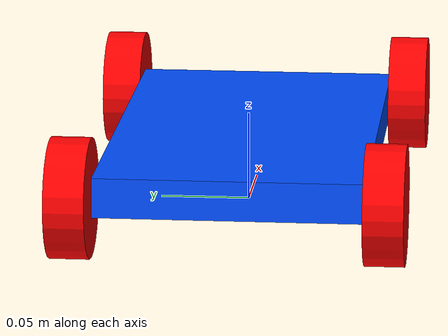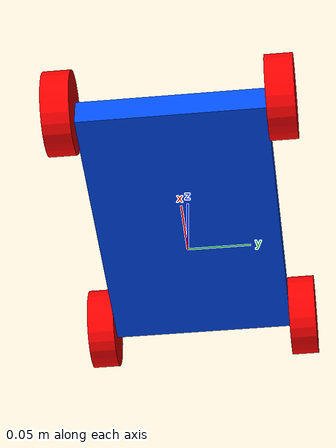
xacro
<?xml version="1.0"?>
<robot xmlns:xacro="http://www.ros.org/wiki/xacro"
       name="Jorgito_coitito">

    <xacro:property name="scale" value="1.0"/>

    <xacro:property name="chasis_length" value="${0.256*scale}"/>
    <xacro:property name="chasis_width"  value="${0.148*scale}"/>
    <xacro:property name="chasis_height" value="${0.022*scale}"/>
    <xacro:property name="wheel_radius"  value="${0.033*scale}"/>
    <xacro:property name="wheel_width"   value="${0.022*scale}"/>
    <xacro:property name="wheel_x_off"   value="${0.128*scale}"/>
    <xacro:property name="wheel_y_off"   value="${0.085*scale}"/>
    <xacro:property name="chasis_mass" value="0.5"/>
    <xacro:property name="wheel_mass" value="0.05"/>
    <xacro:property name="steer_mass" value="0.01"/>

    <material name="blue"><color rgba="0.0 0.3 1.0 1.0"/></material>
    <material name="black"><color rgba="0.05 0.05 0.05 1.0"/></material>

    <xacro:macro name="box_inertia" params="m l w h">
        <inertial>
            <origin xyz="0 0 0" rpy="0 0 0"/>
            <mass value="${m}"/>
            <inertia ixx="${m*(w*w+h*h)/12}" ixy="0.0" ixz="0.0"
                     iyy="${m*(l*l+h*h)/12}" iyz="0.0"
                     izz="${m*(w*w+l*l)/12}"/>
        </inertial>
    </xacro:macro>

    <xacro:macro name="cylinder_inertia" params="m r l">
        <inertial>
            <origin xyz="0 0 0" rpy="0 0 0"/>
            <mass value="${m}"/>
            <inertia ixx="${m*(3*r*r+l*l)/12}" ixy="0.0" ixz="0.0"
                     iyy="${m*(3*r*r+l*l)/12}" iyz="0.0"
                     izz="${m*r*r/2}"/>
        </inertial>
    </xacro:macro>

    <link name="base_footprint"/>

    <joint name="base_joint" type="fixed">
        <parent link="base_footprint"/>
        <child link="base_link"/>
        <origin xyz="0 0 ${wheel_radius}" rpy="0 0 0"/>
    </joint>

    <link name="base_link">
        <visual>
            <geometry><box size="${chasis_length} ${chasis_width} ${chasis_height}"/></geometry>
            <material name="blue"/>
        </visual>
        <collision>
            <geometry><box size="${chasis_length} ${chasis_width} ${chasis_height}"/></geometry>
        </collision>
        <xacro:box_inertia m="${chasis_mass}" l="${chasis_length}" w="${chasis_width}" h="${chasis_height}"/>
    </link>

    <xacro:macro name="wheel" params="prefix x_off y_off">
        <link name="${prefix}_wheel">
            <visual>
                <origin xyz="0 0 0" rpy="0 0 0"/>
                <geometry><cylinder radius="${wheel_radius}" length="${wheel_width}"/></geometry>
                <material name="${prefix}_wheel_material">
                    <color rgba="1.0 0.0 0.0 1.0"/>
                </material>
            </visual>
            <collision>
                <origin xyz="0 0 0" rpy="0 0 0"/>
                <geometry><cylinder radius="${wheel_radius}" length="${wheel_width}"/></geometry>
            </collision>
            <xacro:cylinder_inertia m="${wheel_mass}" r="${wheel_radius}" l="${wheel_width}"/>
        </link>

        <joint name="${prefix}_wheel_joint" type="continuous">
            <parent link="base_link"/>
            <child link="${prefix}_wheel"/>
            <origin xyz="${x_off} ${y_off} 0" rpy="-1.5708 0 0"/>
            <axis xyz="0 0 1"/>
            <dynamics damping="0.1" friction="0.1"/>
        </joint>
    </xacro:macro>

    <xacro:macro name="steer_wheel" params="prefix x_off y_off">
        <link name="${prefix}_steer_link">
            <inertial>
                <mass value="${steer_mass}"/>
                <inertia ixx="0.00001" ixy="0.0" ixz="0.0"
                         iyy="0.00001" iyz="0.0" izz="0.00001"/>
            </inertial>
        </link>

        <joint name="${prefix}_steer_joint" type="revolute">
            <parent link="base_link"/>
            <child link="${prefix}_steer_link"/>
            <origin xyz="${x_off} ${y_off} 0" rpy="0 0 0"/>
            <axis xyz="0 0 1"/>
            <dynamics damping="0.05" friction="0.05"/>
            <limit lower="-0.6" upper="0.6" effort="10" velocity="5"/>
        </joint>

        <link name="${prefix}_wheel">
            <visual>
                <origin xyz="0 0 0" rpy="0 0 0"/>
                <geometry><cylinder radius="${wheel_radius}" length="${wheel_width}"/></geometry>
                <material name="${prefix}_wheel_material">
                    <color rgba="1.0 0.0 0.0 1.0"/>
                </material>
            </visual>
            <collision>
                <origin xyz="0 0 0" rpy="0 0 0"/>
                <geometry><cylinder radius="${wheel_radius}" length="${wheel_width}"/></geometry>
            </collision>
            <xacro:cylinder_inertia m="${wheel_mass}" r="${wheel_radius}" l="${wheel_width}"/>
        </link>

        <joint name="${prefix}_wheel_joint" type="continuous">
            <parent link="${prefix}_steer_link"/>
            <child link="${prefix}_wheel"/>
            <origin xyz="0 0 0" rpy="-1.5708 0 0"/>
            <axis xyz="0 0 1"/>
            <dynamics damping="0.01" friction="0.01"/>
        </joint>
    </xacro:macro>

    <xacro:wheel prefix="rear_left"   x_off="${-wheel_x_off}" y_off="${wheel_y_off}"/>
    <xacro:wheel prefix="rear_right"  x_off="${-wheel_x_off}" y_off="${-wheel_y_off}"/>
    <xacro:steer_wheel prefix="front_left"  x_off="${wheel_x_off}" y_off="${wheel_y_off}"/>
    <xacro:steer_wheel prefix="front_right" x_off="${wheel_x_off}" y_off="${-wheel_y_off}"/>

</robot>
